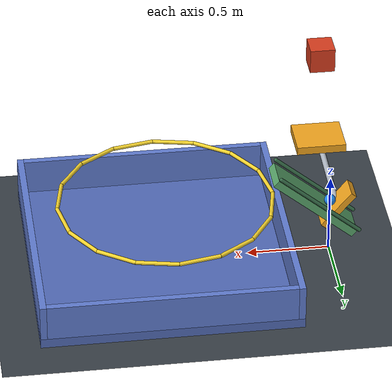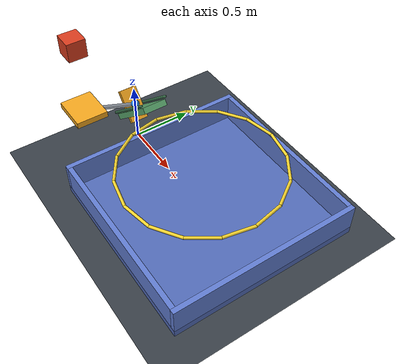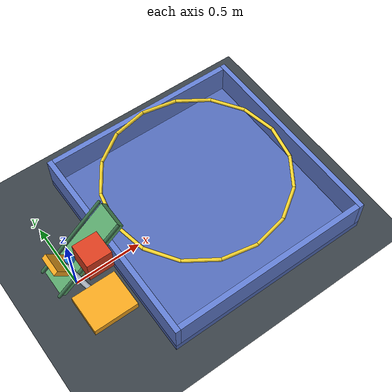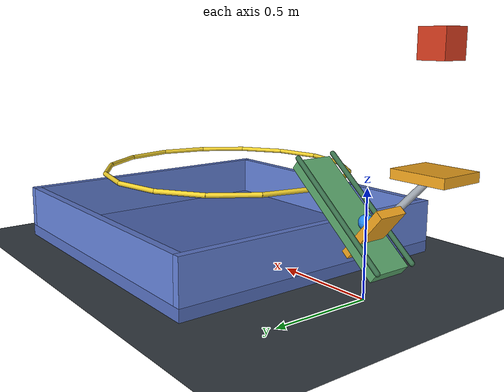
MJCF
<mujoco model="drop_driven_spring_launcher">
  <compiler angle="degree" inertiafromgeom="true"/>
  <option timestep="0.002" gravity="0 0 -9.81" integrator="implicitfast" solver="Newton" iterations="100" cone="elliptic"/>
  <size njmax="1000" nconmax="300"/>
  <visual>
    <global azimuth="125" elevation="-22"/>
    <headlight ambient="0.35 0.35 0.35" diffuse="0.7 0.7 0.7"/>
  </visual>

  <worldbody>
    <light name="overhead" pos="0.5 -1.5 3" dir="0 0 -1"/>
    <camera name="overview" pos="2.7 -3.8 2.5" xyaxes="0.86 0.51 0 -0.22 0.37 0.90"/>

    <geom name="floor" type="plane" size="4 4 0.1" contype="1" conaffinity="6" friction="0.8 0.02 0.01" solref="0.008 1" rgba="0.22 0.25 0.28 1"/>

    <!-- The block's bottom starts exactly 0.5 m above the compressor pad. -->
    <body name="block" pos="0 -0.45 1.10">
      <freejoint name="block_free"/>
      <geom name="block_compressor" type="box" size="0.075 0.075 0.075" mass="2" contype="2" conaffinity="9" priority="1" friction="0.15 0.005 0.001" solref="0.006 1" rgba="0.85 0.24 0.12 1"/>
    </body>

    <!-- A vertical carriage links the compressor pad to an inclined striker. -->
    <body name="plunger" pos="0 0 0.35">
      <joint name="plunger_slide" type="slide" axis="0 0 1" limited="true" range="-0.23 0.25" stiffness="800" springref="0.00367875" damping="0.4" armature="0.002"/>
      <geom name="plunger_pad" type="box" pos="0 -0.45 0.15" size="0.15 0.13 0.025" mass="0.22" contype="8" conaffinity="6" priority="1" friction="0.15 0.005 0.001" solref="0.006 1" rgba="0.95 0.65 0.12 1"/>
      <geom name="plunger_link" type="capsule" fromto="0 -0.45 0.15 -0.042132 0 -0.035353" size="0.018" mass="0.02" contype="0" conaffinity="0" rgba="0.65 0.68 0.72 1"/>
      <geom name="plunger_striker" type="box" pos="-0.042132 0 -0.035353" quat="0.9396926 0 -0.3420201 0" size="0.02 0.075 0.14" mass="0.06" contype="8" conaffinity="6" priority="2" friction="0.01 0.001 0.0001" solref="0.008 0.12" solimp="0.95 0.99 0.001" rgba="0.95 0.65 0.12 1"/>
    </body>

    <body name="ball" pos="0 0 0.35">
      <freejoint name="ball_free"/>
      <geom name="ball_sphere" type="sphere" size="0.035" mass="0.04" contype="4" conaffinity="9" friction="0.02 0.002 0.0001" solref="0.006 1" rgba="0.15 0.55 0.95 1"/>
    </body>

    <!-- The striker passes through a clearance slot represented by collision masks. -->
    <body name="ramp" pos="0 0 0">
      <geom name="ramp_surface" type="box" pos="0.103681 0 0.358674" quat="0.9396926 0 -0.3420201 0" size="0.315 0.10 0.025" contype="1" conaffinity="4" priority="1" friction="0.015 0.001 0.0001" solref="0.006 1" rgba="0.35 0.65 0.42 1"/>
      <geom name="ramp_left_rail" type="capsule" fromto="-0.165258 0.108 0.189138 0.317350 0.108 0.594094" size="0.012" contype="1" conaffinity="4" priority="1" friction="0.015 0.001 0.0001" solref="0.006 1" rgba="0.22 0.43 0.29 1"/>
      <geom name="ramp_right_rail" type="capsule" fromto="-0.165258 -0.108 0.189138 0.317350 -0.108 0.594094" size="0.012" contype="1" conaffinity="4" priority="1" friction="0.015 0.001 0.0001" solref="0.006 1" rgba="0.22 0.43 0.29 1"/>
    </body>

    <!-- Horizontal flight hoop: the ball crosses it on its descending arc. -->
    <body name="hoop" pos="1 0 0.43">
      <geom name="hoop_01" type="capsule" fromto="0.65 0 0 0.600522 0.248744 0" size="0.012" contype="1" conaffinity="4" friction="0.2 0.005 0.001" solref="0.008 1" rgba="0.95 0.82 0.18 1"/>
      <geom name="hoop_02" type="capsule" fromto="0.600522 0.248744 0 0.459619 0.459619 0" size="0.012" contype="1" conaffinity="4" friction="0.2 0.005 0.001" solref="0.008 1" rgba="0.95 0.82 0.18 1"/>
      <geom name="hoop_03" type="capsule" fromto="0.459619 0.459619 0 0.248744 0.600522 0" size="0.012" contype="1" conaffinity="4" friction="0.2 0.005 0.001" solref="0.008 1" rgba="0.95 0.82 0.18 1"/>
      <geom name="hoop_04" type="capsule" fromto="0.248744 0.600522 0 0 0.65 0" size="0.012" contype="1" conaffinity="4" friction="0.2 0.005 0.001" solref="0.008 1" rgba="0.95 0.82 0.18 1"/>
      <geom name="hoop_05" type="capsule" fromto="0 0.65 0 -0.248744 0.600522 0" size="0.012" contype="1" conaffinity="4" friction="0.2 0.005 0.001" solref="0.008 1" rgba="0.95 0.82 0.18 1"/>
      <geom name="hoop_06" type="capsule" fromto="-0.248744 0.600522 0 -0.459619 0.459619 0" size="0.012" contype="1" conaffinity="4" friction="0.2 0.005 0.001" solref="0.008 1" rgba="0.95 0.82 0.18 1"/>
      <geom name="hoop_07" type="capsule" fromto="-0.459619 0.459619 0 -0.600522 0.248744 0" size="0.012" contype="1" conaffinity="4" friction="0.2 0.005 0.001" solref="0.008 1" rgba="0.95 0.82 0.18 1"/>
      <geom name="hoop_08" type="capsule" fromto="-0.600522 0.248744 0 -0.65 0 0" size="0.012" contype="1" conaffinity="4" friction="0.2 0.005 0.001" solref="0.008 1" rgba="0.95 0.82 0.18 1"/>
      <geom name="hoop_09" type="capsule" fromto="-0.65 0 0 -0.600522 -0.248744 0" size="0.012" contype="1" conaffinity="4" friction="0.2 0.005 0.001" solref="0.008 1" rgba="0.95 0.82 0.18 1"/>
      <geom name="hoop_10" type="capsule" fromto="-0.600522 -0.248744 0 -0.459619 -0.459619 0" size="0.012" contype="1" conaffinity="4" friction="0.2 0.005 0.001" solref="0.008 1" rgba="0.95 0.82 0.18 1"/>
      <geom name="hoop_11" type="capsule" fromto="-0.459619 -0.459619 0 -0.248744 -0.600522 0" size="0.012" contype="1" conaffinity="4" friction="0.2 0.005 0.001" solref="0.008 1" rgba="0.95 0.82 0.18 1"/>
      <geom name="hoop_12" type="capsule" fromto="-0.248744 -0.600522 0 0 -0.65 0" size="0.012" contype="1" conaffinity="4" friction="0.2 0.005 0.001" solref="0.008 1" rgba="0.95 0.82 0.18 1"/>
      <geom name="hoop_13" type="capsule" fromto="0 -0.65 0 0.248744 -0.600522 0" size="0.012" contype="1" conaffinity="4" friction="0.2 0.005 0.001" solref="0.008 1" rgba="0.95 0.82 0.18 1"/>
      <geom name="hoop_14" type="capsule" fromto="0.248744 -0.600522 0 0.459619 -0.459619 0" size="0.012" contype="1" conaffinity="4" friction="0.2 0.005 0.001" solref="0.008 1" rgba="0.95 0.82 0.18 1"/>
      <geom name="hoop_15" type="capsule" fromto="0.459619 -0.459619 0 0.600522 -0.248744 0" size="0.012" contype="1" conaffinity="4" friction="0.2 0.005 0.001" solref="0.008 1" rgba="0.95 0.82 0.18 1"/>
      <geom name="hoop_16" type="capsule" fromto="0.600522 -0.248744 0 0.65 0 0" size="0.012" contype="1" conaffinity="4" friction="0.2 0.005 0.001" solref="0.008 1" rgba="0.95 0.82 0.18 1"/>
    </body>

    <!-- Broad, open-topped cup with dissipative bottom and wall contacts. -->
    <body name="cup" pos="1.05 0 0">
      <geom name="cup_bottom" type="box" pos="0 0 0.03" size="0.78 0.78 0.03" contype="1" conaffinity="4" priority="3" condim="6" friction="0.8 0.02 0.01" solref="0.008 1" rgba="0.32 0.42 0.72 1"/>
      <geom name="cup_left_wall" type="box" pos="-0.76 0 0.17" size="0.02 0.78 0.11" contype="1" conaffinity="4" priority="3" condim="6" friction="0.8 0.02 0.01" solref="0.008 1" rgba="0.38 0.49 0.82 1"/>
      <geom name="cup_right_wall" type="box" pos="0.76 0 0.17" size="0.02 0.78 0.11" contype="1" conaffinity="4" priority="3" condim="6" friction="0.8 0.02 0.01" solref="0.008 1" rgba="0.38 0.49 0.82 1"/>
      <geom name="cup_front_wall" type="box" pos="0 -0.76 0.17" size="0.74 0.02 0.11" contype="1" conaffinity="4" priority="3" condim="6" friction="0.8 0.02 0.01" solref="0.008 1" rgba="0.38 0.49 0.82 1"/>
      <geom name="cup_back_wall" type="box" pos="0 0.76 0.17" size="0.74 0.02 0.11" contype="1" conaffinity="4" priority="3" condim="6" friction="0.8 0.02 0.01" solref="0.008 1" rgba="0.38 0.49 0.82 1"/>
    </body>
  </worldbody>

  <keyframe>
    <key name="start"/>
  </keyframe>
</mujoco>
